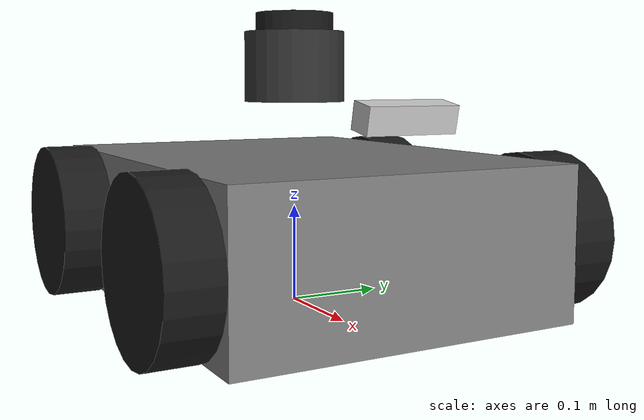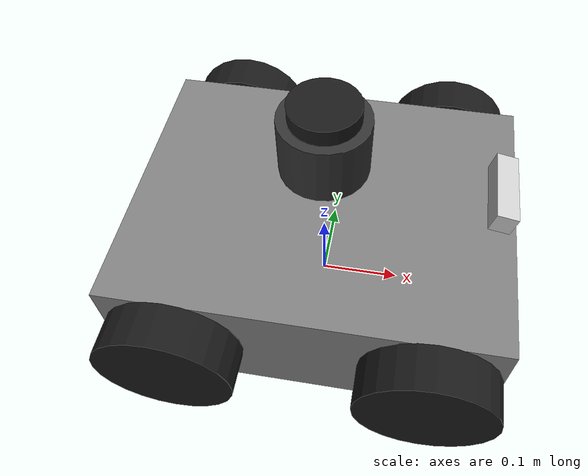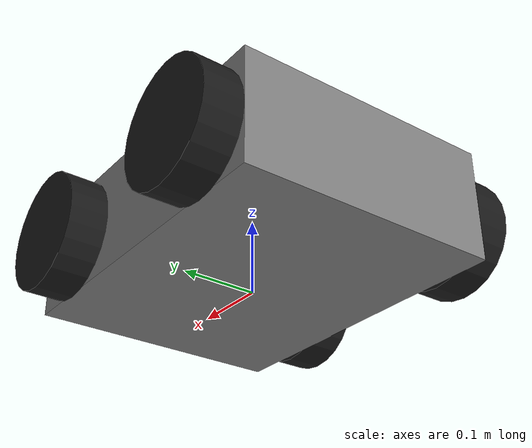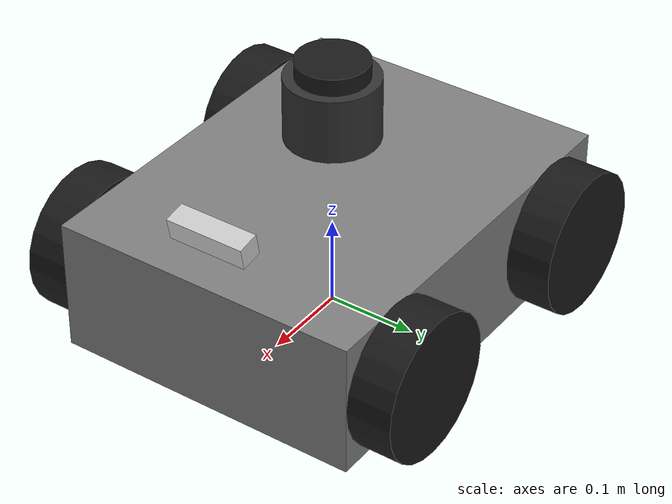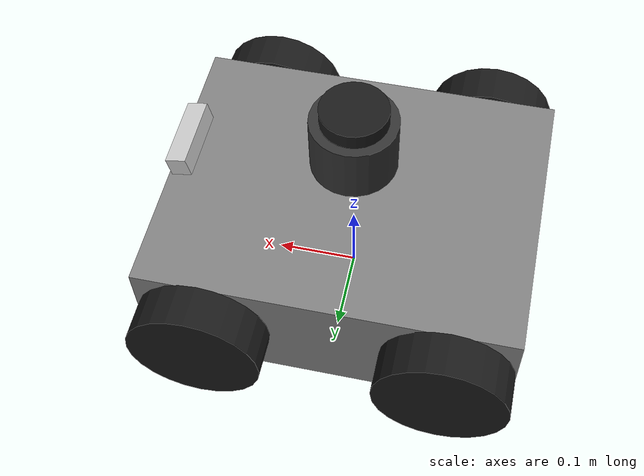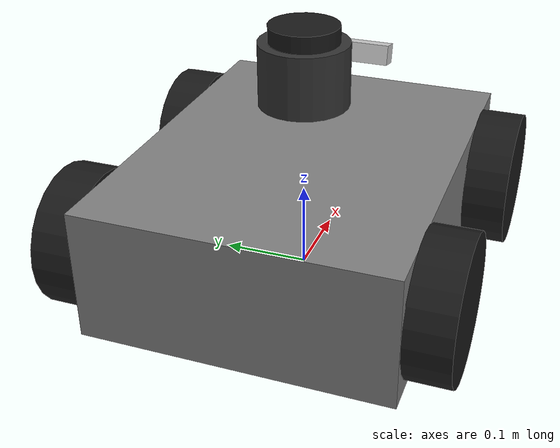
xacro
<?xml version="1.0"?>
<!--
  Robot ① 先導ロボット (Scout)
  搭載センサ:
    - VLP-16相当 3D LiDAR (上部中央)
    - RealSense D435 RGBD (前方)
  役割: 環境地図生成・セマンティックマッピング・先導走行
-->
<robot name="robot1" xmlns:xacro="http://ros.org/wiki/xacro">

  <xacro:include filename="$(find farm_description)/urdf/common/base.urdf.xacro"/>
  <xacro:include filename="$(find farm_description)/urdf/common/lidar.urdf.xacro"/>
  <xacro:include filename="$(find farm_description)/urdf/common/rgbd.urdf.xacro"/>

  <!-- 差動駆動台車 (青色) -->
  <xacro:diff_drive_base robot_name="robot1" color="grey"/>

  <!-- LiDAR: 車体上部中央 -->
  <xacro:velodyne_lidar
    prefix="robot1"
    parent="robot1/base_link"
    xyz="0.0 0.0 0.20"
    rpy="0.0 0.0 0.0"/>

  <!-- 前方RGBD: 前端・前方斜め下向き -->
  <xacro:realsense_d435
    prefix="robot1_front"
    parent="robot1/base_link"
    xyz="0.20 0.0 0.12"
    rpy="0.0 0.2 0.0"
    robot="robot1"/>

</robot>

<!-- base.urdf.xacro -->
<robot xmlns:xacro="http://ros.org/wiki/xacro">

  <!-- ===== 共通パラメータ ===== -->
  <xacro:property name="PI" value="3.14159265358979"/>

  <xacro:property name="base_length" value="0.45"/>
  <xacro:property name="base_width"  value="0.35"/>
  <xacro:property name="base_height" value="0.15"/>

  <xacro:property name="wheel_radius" value="0.08"/>
  <xacro:property name="wheel_width"  value="0.05"/>
  <xacro:property name="track_width"  value="0.40"/>

  <!-- ===== 材質定義 ===== -->
  <material name="grey">
    <color rgba="0.5 0.5 0.5 1.0"/>
  </material>
  <material name="dark_grey">
    <color rgba="0.2 0.2 0.2 1.0"/>
  </material>
  <material name="black">
    <color rgba="0.1 0.1 0.1 1.0"/>
  </material>
  <material name="white">
    <color rgba="0.9 0.9 0.9 1.0"/>
  </material>
  <material name="green">
    <color rgba="0.1 0.6 0.1 1.0"/>
  </material>
  <material name="silver">
    <color rgba="0.8 0.8 0.8 1.0"/>
  </material>

  <!-- ===== ホイールマクロ ===== -->
  <xacro:macro name="wheel_macro" params="prefix side x y">
    <link name="${prefix}/base_link_${side}_wheel">
      <visual>
        <geometry>
          <cylinder radius="${wheel_radius}" length="${wheel_width}"/>
        </geometry>
        <material name="black"/>
      </visual>
      <collision>
        <geometry>
          <cylinder radius="${wheel_radius}" length="${wheel_width}"/>
        </geometry>
        <surface>
          <friction>
            <ode>
              <mu>0.8</mu>
              <mu2>0.8</mu2>
            </ode>
          </friction>
        </surface>
      </collision>
      <inertial>
        <mass value="0.5"/>
        <inertia
          ixx="0.00083" ixy="0.0" ixz="0.0"
          iyy="0.00083" iyz="0.0"
          izz="0.00160"/>
      </inertial>
    </link>

    <joint name="${prefix}/${side}_wheel_joint" type="continuous">
      <parent link="${prefix}/base_link"/>
      <child  link="${prefix}/base_link_${side}_wheel"/>
      <origin xyz="${x} ${y} 0.0" rpy="${PI/2} 0.0 0.0"/>
      <axis xyz="0 0 -1"/>
      <dynamics damping="0.1"/>
    </joint>

    <gazebo reference="${prefix}/base_link_${side}_wheel">
      <mu1>0.8</mu1>
      <mu2>0.8</mu2>
      <material>Gazebo/Black</material>
    </gazebo>
  </xacro:macro>

  <!-- ===== 差動駆動台車マクロ ===== -->
  <xacro:macro name="diff_drive_base" params="robot_name color">

    <!-- base_footprint: 地面接地点 -->
    <link name="${robot_name}/base_footprint"/>

    <joint name="${robot_name}/base_footprint_joint" type="fixed">
      <parent link="${robot_name}/base_footprint"/>
      <child  link="${robot_name}/base_link"/>
      <origin xyz="0.0 0.0 ${wheel_radius}" rpy="0.0 0.0 0.0"/>
    </joint>

    <!-- 車体本体 -->
    <link name="${robot_name}/base_link">
      <visual>
        <geometry>
          <box size="${base_length} ${base_width} ${base_height}"/>
        </geometry>
        <material name="${color}"/>
      </visual>
      <collision>
        <geometry>
          <box size="${base_length} ${base_width} ${base_height}"/>
        </geometry>
      </collision>
      <inertial>
        <mass value="8.0"/>
        <inertia
          ixx="0.0843" ixy="0.0" ixz="0.0"
          iyy="0.1408" iyz="0.0"
          izz="0.2108"/>
      </inertial>
    </link>

    <!-- 4輪配置 -->
    <xacro:wheel_macro prefix="${robot_name}" side="left_front"
      x="${base_length/2 - 0.08}" y="${track_width/2}"/>
    <xacro:wheel_macro prefix="${robot_name}" side="right_front"
      x="${base_length/2 - 0.08}" y="${-track_width/2}"/>
    <xacro:wheel_macro prefix="${robot_name}" side="left_rear"
      x="${-(base_length/2 - 0.08)}" y="${track_width/2}"/>
    <xacro:wheel_macro prefix="${robot_name}" side="right_rear"
      x="${-(base_length/2 - 0.08)}" y="${-track_width/2}"/>

    <!-- 差動駆動プラグイン (Gazebo Harmonic) -->
    <gazebo>
      <plugin filename="gz-sim-diff-drive-system"
              name="gz::sim::systems::DiffDrive">
        <left_joint>${robot_name}/left_front_wheel_joint</left_joint>
        <right_joint>${robot_name}/right_front_wheel_joint</right_joint>
        <wheel_separation>${track_width}</wheel_separation>
        <wheel_radius>${wheel_radius}</wheel_radius>
        <odom_publish_frequency>20</odom_publish_frequency>
        <topic>/${robot_name}/cmd_vel</topic>
        <odom_topic>/${robot_name}/odom</odom_topic>
        <tf_topic>/tf</tf_topic>
        <frame_id>${robot_name}/odom</frame_id>
        <child_frame_id>${robot_name}/base_footprint</child_frame_id>
        <max_linear_acceleration>1.0</max_linear_acceleration>
      </plugin>
    </gazebo>

    <!-- ジョイント状態パブリッシャー -->
    <gazebo>
      <plugin filename="gz-sim-joint-state-publisher-system"
              name="gz::sim::systems::JointStatePublisher">
        <topic>/${robot_name}/joint_states</topic>
        <joint_name>${robot_name}/left_front_wheel_joint</joint_name>
        <joint_name>${robot_name}/right_front_wheel_joint</joint_name>
        <joint_name>${robot_name}/left_rear_wheel_joint</joint_name>
        <joint_name>${robot_name}/right_rear_wheel_joint</joint_name>
      </plugin>
    </gazebo>

  </xacro:macro>

</robot>

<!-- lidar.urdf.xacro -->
<robot xmlns:xacro="http://ros.org/wiki/xacro">

  <!--
    3D LiDARマクロ (VLP-16相当)
    params:
      prefix  - ロボット名 (例: robot1)
      parent  - 取付親リンク名
      xyz     - 取付位置 "x y z"
      rpy     - 取付姿勢 "roll pitch yaw"
  -->
  <xacro:macro name="velodyne_lidar" params="prefix parent xyz rpy">

    <joint name="${prefix}/lidar_joint" type="fixed">
      <parent link="${parent}"/>
      <child  link="${prefix}/lidar_link"/>
      <origin xyz="${xyz}" rpy="${rpy}"/>
    </joint>

    <link name="${prefix}/lidar_link">
      <!-- ボディ (円筒) -->
      <visual>
        <origin xyz="0 0 -0.035" rpy="0 0 0"/>
        <geometry>
          <cylinder radius="0.0516" length="0.0717"/>
        </geometry>
        <material name="dark_grey"/>
      </visual>
      <!-- センサ頂部 (回転ヘッド) -->
      <visual>
        <origin xyz="0 0 0.0" rpy="0 0 0"/>
        <geometry>
          <cylinder radius="0.040" length="0.040"/>
        </geometry>
        <material name="black"/>
      </visual>
      <collision>
        <origin xyz="0 0 -0.015" rpy="0 0 0"/>
        <geometry>
          <cylinder radius="0.0516" length="0.0917"/>
        </geometry>
      </collision>
      <inertial>
        <mass value="0.830"/>
        <inertia
          ixx="0.000304" ixy="0.0" ixz="0.0"
          iyy="0.000304" iyz="0.0"
          izz="0.000350"/>
      </inertial>
    </link>

    <!-- Gazebo Harmonicセンサ定義 -->
    <gazebo reference="${prefix}/lidar_link">
      <sensor name="${prefix}_lidar_sensor" type="gpu_lidar">
        <gz_frame_id>${prefix}/lidar_link</gz_frame_id>
        <update_rate>10</update_rate>
        <topic>/${prefix}/lidar/points</topic>
        <always_on>true</always_on>
        <visualize>false</visualize>
        <lidar>
          <scan>
            <horizontal>
              <samples>360</samples>
              <resolution>1</resolution>
              <min_angle>-3.14159265</min_angle>
              <max_angle>3.14159265</max_angle>
            </horizontal>
            <vertical>
              <samples>16</samples>
              <resolution>1</resolution>
              <min_angle>-0.261799</min_angle>  <!-- -15 deg -->
              <max_angle>0.261799</max_angle>   <!-- +15 deg -->
            </vertical>
          </scan>
          <range>
            <min>0.1</min>
            <max>100.0</max>
            <resolution>0.001</resolution>
          </range>
          <noise>
            <type>gaussian</type>
            <mean>0.0</mean>
            <stddev>0.008</stddev>
          </noise>
        </lidar>
      </sensor>
    </gazebo>

  </xacro:macro>

</robot>

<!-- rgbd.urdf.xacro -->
<robot xmlns:xacro="http://ros.org/wiki/xacro">

  <xacro:macro name="realsense_d435" params="prefix parent xyz rpy robot">

    <joint name="${prefix}/rgbd_joint" type="fixed">
      <parent link="${parent}"/>
      <child  link="${prefix}/rgbd_link"/>
      <origin xyz="${xyz}" rpy="${rpy}"/>
    </joint>

    <!-- カメラ筐体 -->
    <link name="${prefix}/rgbd_link">
      <visual>
        <geometry>
          <box size="0.025 0.090 0.025"/>
        </geometry>
        <material name="silver"/>
      </visual>
      <collision>
        <geometry>
          <box size="0.025 0.090 0.025"/>
        </geometry>
      </collision>
      <inertial>
        <mass value="0.072"/>
        <inertia
          ixx="0.0000154" ixy="0.0" ixz="0.0"
          iyy="0.0000036" iyz="0.0"
          izz="0.0000172"/>
      </inertial>
    </link>

    <!-- Optical frame: ROS標準 (Z前・X右・Y下) への変換 -->
    <joint name="${prefix}/rgbd_optical_joint" type="fixed">
      <parent link="${prefix}/rgbd_link"/>
      <child  link="${prefix}/rgbd_optical_frame"/>
      <origin xyz="0 0 0" rpy="${-PI/2} 0 ${-PI/2}"/>
    </joint>
    <link name="${prefix}/rgbd_optical_frame"/>

    <!-- Gazebo Harmonic RGBDセンサ定義 -->
    <gazebo reference="${prefix}/rgbd_link">
      <sensor name="${prefix}_rgbd_sensor" type="rgbd_camera">
        <gz_frame_id>${prefix}/rgbd_optical_frame</gz_frame_id>
        <update_rate>30</update_rate>
        <topic>/${robot}/rgbd/${prefix}</topic>
        <always_on>true</always_on>
        <visualize>false</visualize>
        <camera>
          <horizontal_fov>1.5184</horizontal_fov>
          <image>
            <width>640</width>
            <height>480</height>
            <format>RGB_INT8</format>
          </image>
          <clip>
            <near>0.1</near>
            <far>10.0</far>
          </clip>
          <depth_camera>
            <clip>
              <near>0.1</near>
              <far>10.0</far>
            </clip>
          </depth_camera>
          <noise>
            <type>gaussian</type>
            <mean>0.0</mean>
            <stddev>0.005</stddev>
          </noise>
        </camera>
      </sensor>
    </gazebo>

  </xacro:macro>

</robot>
